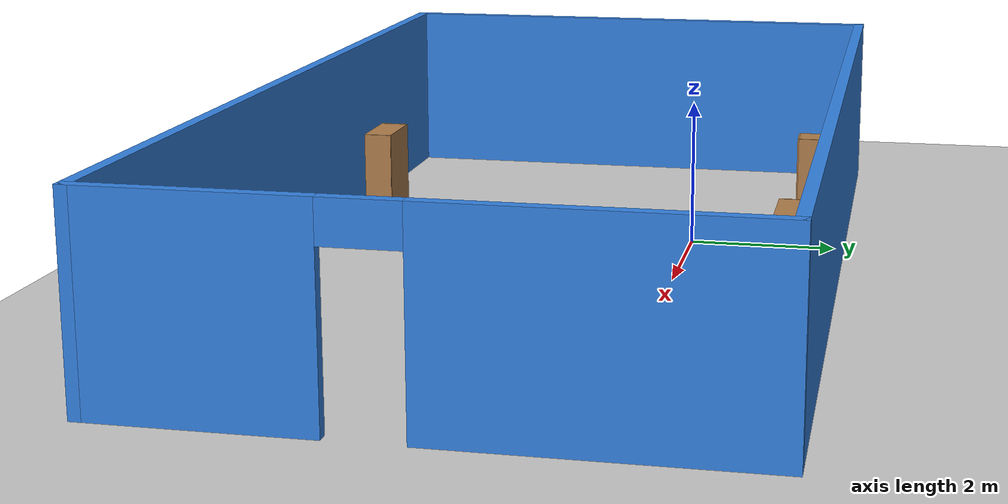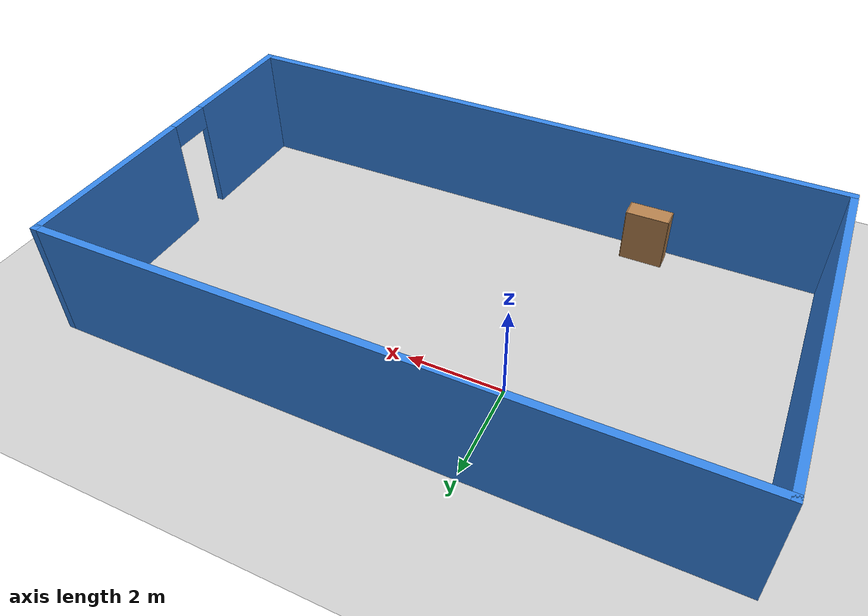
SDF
<sdf version="1.7">
 <world name="default">
  <light name="sun" type="directional">
   <pose>0 0 10 0 -0 0</pose>
   <diffuse>0.8 0.8 0.8 1</diffuse>
   <specular>0.2 0.2 0.2 1</specular>
   <attenuation>
    <range>1000</range>
    <constant>0.9</constant>
    <linear>0.01</linear>
    <quadratic>0.001</quadratic>
   </attenuation>
   <direction>-0.5 0.1 -0.9</direction>
   <spot><inner_angle>0</inner_angle><outer_angle>0</outer_angle><falloff>0</falloff></spot>
  </light>
  <model name="ground_plane">
   <static>1</static>
   <link name="link">
    <collision name="collision">
     <geometry><plane><normal>0 0 1</normal><size>100 100</size></plane></geometry>
     <surface><friction><ode><mu>100</mu><mu2>50</mu2></ode></friction></surface>
    </collision>
    <visual name="visual">
     <cast_shadows>0</cast_shadows>
     <geometry><plane><normal>0 0 1</normal><size>100 100</size></plane></geometry>
     <material>
      <script><uri>file://media/materials/scripts/gazebo.material</uri><name>Gazebo/Grey</name></script>
     </material>
    </visual>
   </link>
  </model>
  <gravity>0 0 -9.8</gravity>
  <magnetic_field>6e-06 2.3e-05 -4.2e-05</magnetic_field>
  <atmosphere type="adiabatic"/>
  <physics type="ode">
   <max_step_size>0.001</max_step_size>
   <real_time_factor>1</real_time_factor>
   <real_time_update_rate>1000</real_time_update_rate>
  </physics>
  <scene><ambient>0.4 0.4 0.4 1</ambient><background>0.7 0.7 0.7 1</background><shadows>1</shadows></scene>
  <audio><device>default</device></audio>
  <spherical_coordinates>
   <surface_model>EARTH_WGS84</surface_model>
   <latitude_deg>0</latitude_deg>
   <longitude_deg>0</longitude_deg>
   <elevation>0</elevation>
   <heading_deg>0</heading_deg>
  </spherical_coordinates>
  <model name="TestWorld1.world">
   <pose>1.76714 -1.60804 0 0 -0 0</pose>
   <link name="Wall_0">
    <collision name="Wall_0_Collision">
     <geometry><box><size>13.5 0.15 2.5</size></box></geometry>
     <pose>0 0 1.25 0 -0 0</pose>
    </collision>
    <visual name="Wall_0_Visual">
     <pose>0 0 1.25 0 -0 0</pose>
     <geometry><box><size>13.5 0.15 2.5</size></box></geometry>
     <material>
      <script><uri>file://media/materials/scripts/gazebo.material</uri><name>Gazebo/Grey</name></script>
      <ambient>0.207843 0.517647 0.894118 1</ambient>
     </material>
     <meta><layer>0</layer></meta>
    </visual>
    <pose>-0 3.675 0 0 -0 3.14159</pose>
   </link>
   <link name="Wall_5">
    <pose>6.675 -0 0 0 -0 -1.5708</pose>
    <visual name="Wall_5_Visual_0">
     <pose>-1.80843 0 1.25 0 -0 0</pose>
     <geometry><box><size>3.88313 0.15 2.5</size></box></geometry>
     <material>
      <script><uri>file://media/materials/scripts/gazebo.material</uri><name>Gazebo/Grey</name></script>
      <ambient>0.207843 0.517647 0.894118 1</ambient>
     </material>
     <meta><layer>0</layer></meta>
    </visual>
    <collision name="Wall_5_Collision_0">
     <geometry><box><size>3.88313 0.15 2.5</size></box></geometry>
     <pose>-1.80843 0 1.25 0 -0 0</pose>
    </collision>
    <visual name="Wall_5_Visual_1">
     <pose>2.39157 0 1.25 0 -0 0</pose>
     <geometry><box><size>2.71687 0.15 2.5</size></box></geometry>
     <material>
      <script><uri>file://media/materials/scripts/gazebo.material</uri><name>Gazebo/Grey</name></script>
      <ambient>0.207843 0.517647 0.894118 1</ambient>
     </material>
     <meta><layer>0</layer></meta>
    </visual>
    <collision name="Wall_5_Collision_1">
     <geometry><box><size>2.71687 0.15 2.5</size></box></geometry>
     <pose>2.39157 0 1.25 0 -0 0</pose>
    </collision>
    <visual name="Wall_5_Visual_2">
     <pose>0.583132 0 2.25 0 -0 0</pose>
     <geometry><box><size>0.9 0.15 0.5</size></box></geometry>
     <material>
      <script><uri>file://media/materials/scripts/gazebo.material</uri><name>Gazebo/Grey</name></script>
      <ambient>0.207843 0.517647 0.894118 1</ambient>
     </material>
     <meta><layer>0</layer></meta>
    </visual>
    <collision name="Wall_5_Collision_2">
     <geometry><box><size>0.9 0.15 0.5</size></box></geometry>
     <pose>0.583132 0 2.25 0 -0 0</pose>
    </collision>
   </link>
   <link name="Wall_6">
    <collision name="Wall_6_Collision">
     <geometry><box><size>13.5 0.15 2.5</size></box></geometry>
     <pose>0 0 1.25 0 -0 0</pose>
    </collision>
    <visual name="Wall_6_Visual">
     <pose>0 0 1.25 0 -0 0</pose>
     <geometry><box><size>13.5 0.15 2.5</size></box></geometry>
     <material>
      <script><uri>file://media/materials/scripts/gazebo.material</uri><name>Gazebo/Grey</name></script>
      <ambient>0.207843 0.517647 0.894118 1</ambient>
     </material>
     <meta><layer>0</layer></meta>
    </visual>
    <pose>-0 -3.675 0 0 -0 3.14159</pose>
   </link>
   <link name="Wall_7">
    <collision name="Wall_7_Collision">
     <geometry><box><size>7.5 0.15 2.5</size></box></geometry>
     <pose>0 0 1.25 0 -0 0</pose>
    </collision>
    <visual name="Wall_7_Visual">
     <pose>0 0 1.25 0 -0 0</pose>
     <geometry><box><size>7.5 0.15 2.5</size></box></geometry>
     <material>
      <script><uri>file://media/materials/scripts/gazebo.material</uri><name>Gazebo/Grey</name></script>
      <ambient>0.207843 0.517647 0.894118 1</ambient>
     </material>
     <meta><layer>0</layer></meta>
    </visual>
    <pose>-6.675 -0 0 0 -0 1.5708</pose>
   </link>
   <static>1</static>
  </model>
  <model name="bookshelf">
   <static>1</static>
   <link name="link">
    <inertial><mass>1</mass></inertial>
    <collision name="back">
     <pose>0 0.005 0.6 0 -0 0</pose>
     <geometry><box><size>0.9 0.01 1.2</size></box></geometry>
    </collision>
    <visual name="visual1">
     <pose>0 0.005 0.6 0 -0 0</pose>
     <geometry><box><size>0.9 0.01 1.2</size></box></geometry>
     <material>
      <script><uri>file://media/materials/scripts/gazebo.material</uri><name>Gazebo/Wood</name></script>
     </material>
    </visual>
    <collision name="left_side">
     <pose>0.45 -0.195 0.6 0 -0 0</pose>
     <geometry><box><size>0.02 0.4 1.2</size></box></geometry>
    </collision>
    <visual name="visual2">
     <pose>0.45 -0.195 0.6 0 -0 0</pose>
     <geometry><box><size>0.02 0.4 1.2</size></box></geometry>
     <material>
      <script><uri>file://media/materials/scripts/gazebo.material</uri><name>Gazebo/Wood</name></script>
     </material>
    </visual>
    <collision name="right_side">
     <pose>-0.45 -0.195 0.6 0 -0 0</pose>
     <geometry><box><size>0.02 0.4 1.2</size></box></geometry>
    </collision>
    <visual name="visual3">
     <pose>-0.45 -0.195 0.6 0 -0 0</pose>
     <geometry><box><size>0.02 0.4 1.2</size></box></geometry>
     <material>
      <script><uri>file://media/materials/scripts/gazebo.material</uri><name>Gazebo/Wood</name></script>
     </material>
    </visual>
    <collision name="bottom">
     <pose>0 -0.195 0.03 0 -0 0</pose>
     <geometry><box><size>0.88 0.4 0.06</size></box></geometry>
    </collision>
    <visual name="visual4">
     <pose>0 -0.195 0.03 0 -0 0</pose>
     <geometry><box><size>0.88 0.4 0.06</size></box></geometry>
     <material>
      <script><uri>file://media/materials/scripts/gazebo.material</uri><name>Gazebo/Wood</name></script>
     </material>
    </visual>
    <collision name="top">
     <pose>0 -0.195 1.19 0 -0 0</pose>
     <geometry><box><size>0.88 0.4 0.02</size></box></geometry>
    </collision>
    <visual name="visual5">
     <pose>0 -0.195 1.19 0 -0 0</pose>
     <geometry><box><size>0.88 0.4 0.02</size></box></geometry>
     <material>
      <script><uri>file://media/materials/scripts/gazebo.material</uri><name>Gazebo/Wood</name></script>
     </material>
    </visual>
    <collision name="low_shelf">
     <pose>0 -0.195 0.43 0 -0 0</pose>
     <geometry><box><size>0.88 0.4 0.02</size></box></geometry>
    </collision>
    <visual name="visual6">
     <pose>0 -0.195 0.43 0 -0 0</pose>
     <geometry><box><size>0.88 0.4 0.02</size></box></geometry>
     <material>
      <script><uri>file://media/materials/scripts/gazebo.material</uri><name>Gazebo/Wood</name></script>
     </material>
    </visual>
    <collision name="high_shelf">
     <pose>0 -0.195 0.8 0 -0 0</pose>
     <geometry><box><size>0.88 0.4 0.02</size></box></geometry>
    </collision>
    <visual name="visual7">
     <pose>0 -0.195 0.8 0 -0 0</pose>
     <geometry><box><size>0.88 0.4 0.02</size></box></geometry>
     <material>
      <script><uri>file://media/materials/scripts/gazebo.material</uri><name>Gazebo/Wood</name></script>
     </material>
    </visual>
   </link>
   <pose>2.62593 1.77344 0 0 -0 0</pose>
  </model>
  <model name="cabinet">
   <static>1</static>
   <link name="cabinet_bottom_plate">
    <inertial>
     <pose>0 0 -1 0 -0 0</pose>
     <inertia><ixx>2.05</ixx><ixy>0</ixy><ixz>0</ixz><iyy>2.05</iyy><iyz>0</iyz><izz>2.05</izz></inertia>
     <mass>25</mass>
    </inertial>
    <collision name="cabinet_bottom_plate_geom">
     <pose>0 0 0.01 0 -0 0</pose>
     <geometry><box><size>0.45 0.45 0.02</size></box></geometry>
    </collision>
    <visual name="cabinet_bottom_plate_geom_visual">
     <pose>0 0 0.01 0 -0 0</pose>
     <geometry><box><size>0.45 0.45 0.02</size></box></geometry>
     <material>
      <script><uri>file://media/materials/scripts/gazebo.material</uri><name>Gazebo/Wood</name></script>
     </material>
    </visual>
    <collision name="cabinet_bottom_plate_geom_cabinet_back_plate">
     <pose>0.235 0 0.51 0 -0 0</pose>
     <geometry><box><size>0.02 0.45 1.02</size></box></geometry>
    </collision>
    <visual name="cabinet_bottom_plate_geom_cabinet_back_plate_visual">
     <pose>0.235 0 0.51 0 -0 0</pose>
     <geometry><box><size>0.02 0.45 1.02</size></box></geometry>
     <material>
      <script><uri>file://media/materials/scripts/gazebo.material</uri><name>Gazebo/Wood</name></script>
     </material>
    </visual>
    <collision name="cabinet_bottom_plate_geom_cabinet_left_plate">
     <pose>0 0.235 0.51 0 -0 0</pose>
     <geometry><box><size>0.45 0.02 1.02</size></box></geometry>
    </collision>
    <visual name="cabinet_bottom_plate_geom_cabinet_left_plate_visual">
     <pose>0 0.235 0.51 0 -0 0</pose>
     <geometry><box><size>0.45 0.02 1.02</size></box></geometry>
     <material>
      <script><uri>file://media/materials/scripts/gazebo.material</uri><name>Gazebo/Wood</name></script>
     </material>
    </visual>
    <collision name="cabinet_bottom_plate_geom_cabinet_middle_plate">
     <pose>0 0 0.51 0 -0 0</pose>
     <geometry><box><size>0.45 0.45 0.02</size></box></geometry>
    </collision>
    <visual name="cabinet_bottom_plate_geom_cabinet_middle_plate_visual">
     <pose>0 0 0.51 0 -0 0</pose>
     <geometry><box><size>0.45 0.45 0.02</size></box></geometry>
     <material>
      <script><uri>file://media/materials/scripts/gazebo.material</uri><name>Gazebo/Wood</name></script>
     </material>
    </visual>
    <collision name="cabinet_bottom_plate_geom_cabinet_right_plate">
     <pose>0 -0.235 0.51 0 -0 0</pose>
     <geometry><box><size>0.45 0.02 1.02</size></box></geometry>
    </collision>
    <visual name="cabinet_bottom_plate_geom_cabinet_right_plate_visual">
     <pose>0 -0.235 0.51 0 -0 0</pose>
     <geometry><box><size>0.45 0.02 1.02</size></box></geometry>
     <material>
      <script><uri>file://media/materials/scripts/gazebo.material</uri><name>Gazebo/Wood</name></script>
     </material>
    </visual>
    <collision name="cabinet_bottom_plate_geom_cabinet_top_plate">
     <pose>0 0 1.01 0 -0 0</pose>
     <geometry><box><size>0.45 0.45 0.02</size></box></geometry>
    </collision>
    <visual name="cabinet_bottom_plate_geom_cabinet_top_plate_visual">
     <pose>0 0 1.01 0 -0 0</pose>
     <geometry><box><size>0.45 0.45 0.02</size></box></geometry>
     <material>
      <script><uri>file://media/materials/scripts/gazebo.material</uri><name>Gazebo/Wood</name></script>
     </material>
    </visual>
   </link>
   <pose>-2.87331 1.52365 0 0 -0 0</pose>
  </model>
  <model name="bookshelf_0">
   <static>1</static>
   <link name="link">
    <inertial><mass>1</mass></inertial>
    <collision name="back">
     <pose>0 0.005 0.6 0 -0 0</pose>
     <geometry><box><size>0.9 0.01 1.2</size></box></geometry>
    </collision>
    <visual name="visual1">
     <pose>0 0.005 0.6 0 -0 0</pose>
     <geometry><box><size>0.9 0.01 1.2</size></box></geometry>
     <material>
      <script><uri>file://media/materials/scripts/gazebo.material</uri><name>Gazebo/Wood</name></script>
     </material>
    </visual>
    <collision name="left_side">
     <pose>0.45 -0.195 0.6 0 -0 0</pose>
     <geometry><box><size>0.02 0.4 1.2</size></box></geometry>
    </collision>
    <visual name="visual2">
     <pose>0.45 -0.195 0.6 0 -0 0</pose>
     <geometry><box><size>0.02 0.4 1.2</size></box></geometry>
     <material>
      <script><uri>file://media/materials/scripts/gazebo.material</uri><name>Gazebo/Wood</name></script>
     </material>
    </visual>
    <collision name="right_side">
     <pose>-0.45 -0.195 0.6 0 -0 0</pose>
     <geometry><box><size>0.02 0.4 1.2</size></box></geometry>
    </collision>
    <visual name="visual3">
     <pose>-0.45 -0.195 0.6 0 -0 0</pose>
     <geometry><box><size>0.02 0.4 1.2</size></box></geometry>
     <material>
      <script><uri>file://media/materials/scripts/gazebo.material</uri><name>Gazebo/Wood</name></script>
     </material>
    </visual>
    <collision name="bottom">
     <pose>0 -0.195 0.03 0 -0 0</pose>
     <geometry><box><size>0.88 0.4 0.06</size></box></geometry>
    </collision>
    <visual name="visual4">
     <pose>0 -0.195 0.03 0 -0 0</pose>
     <geometry><box><size>0.88 0.4 0.06</size></box></geometry>
     <material>
      <script><uri>file://media/materials/scripts/gazebo.material</uri><name>Gazebo/Wood</name></script>
     </material>
    </visual>
    <collision name="top">
     <pose>0 -0.195 1.19 0 -0 0</pose>
     <geometry><box><size>0.88 0.4 0.02</size></box></geometry>
    </collision>
    <visual name="visual5">
     <pose>0 -0.195 1.19 0 -0 0</pose>
     <geometry><box><size>0.88 0.4 0.02</size></box></geometry>
     <material>
      <script><uri>file://media/materials/scripts/gazebo.material</uri><name>Gazebo/Wood</name></script>
     </material>
    </visual>
    <collision name="low_shelf">
     <pose>0 -0.195 0.43 0 -0 0</pose>
     <geometry><box><size>0.88 0.4 0.02</size></box></geometry>
    </collision>
    <visual name="visual6">
     <pose>0 -0.195 0.43 0 -0 0</pose>
     <geometry><box><size>0.88 0.4 0.02</size></box></geometry>
     <material>
      <script><uri>file://media/materials/scripts/gazebo.material</uri><name>Gazebo/Wood</name></script>
     </material>
    </visual>
    <collision name="high_shelf">
     <pose>0 -0.195 0.8 0 -0 0</pose>
     <geometry><box><size>0.88 0.4 0.02</size></box></geometry>
    </collision>
    <visual name="visual7">
     <pose>0 -0.195 0.8 0 -0 0</pose>
     <geometry><box><size>0.88 0.4 0.02</size></box></geometry>
     <material>
      <script><uri>file://media/materials/scripts/gazebo.material</uri><name>Gazebo/Wood</name></script>
     </material>
    </visual>
   </link>
   <pose>-1.23676 -4.67033 0 0 -0 0</pose>
  </model>
 </world>
</sdf>
